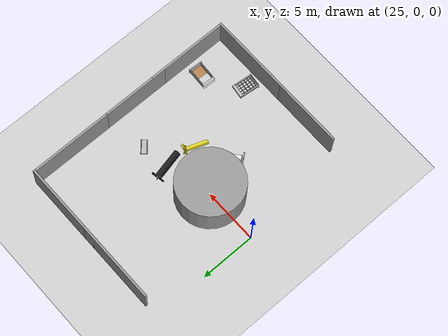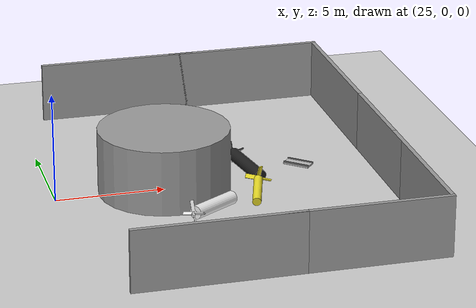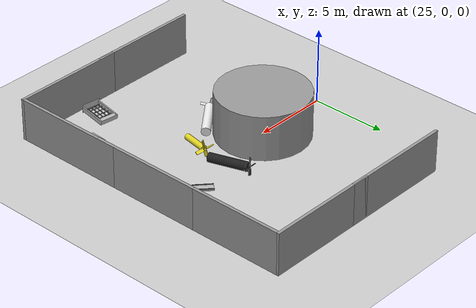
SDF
<sdf version="1.6">
 <world name="default">
  <model name="ground_plane">
   <static>1</static>
   <link name="link">
    <collision name="collision">
     <geometry><plane><normal>0 0 1</normal><size>100 100</size></plane></geometry>
     <surface><friction><ode><mu>100</mu><mu2>50</mu2></ode></friction></surface>
    </collision>
    <visual name="visual">
     <cast_shadows>0</cast_shadows>
     <geometry><plane><normal>0 0 1</normal><size>100 100</size></plane></geometry>
     <material>
      <script><uri>file://media/materials/scripts/gazebo.material</uri><name>Gazebo/Grey</name></script>
     </material>
    </visual>
   </link>
  </model>
  <model name="grey_wall">
   <static>1</static>
   <link name="link">
    <pose>0 0 1.4 0 -0 0</pose>
    <collision name="collision"><geometry><box><size>7.5 0.2 2.8</size></box></geometry></collision>
    <visual name="visual">
     <cast_shadows>0</cast_shadows>
     <geometry><box><size>7.5 0.2 2.8</size></box></geometry>
     <material>
      <script>
       <uri>model://grey_wall/materials/scripts</uri>
       <uri>model://grey_wall/materials/textures</uri>
       <name>vrc/grey_wall</name>
      </script>
     </material>
    </visual>
   </link>
   <pose>40 -6.2 0 0 0 -1.5708</pose>
  </model>
  <model name="grey_wall_clone">
   <static>1</static>
   <link name="link">
    <pose>0 0 1.4 0 -0 0</pose>
    <collision name="collision"><geometry><box><size>7.5 0.2 2.8</size></box></geometry></collision>
    <visual name="visual">
     <cast_shadows>0</cast_shadows>
     <geometry><box><size>7.5 0.2 2.8</size></box></geometry>
     <material>
      <script>
       <uri>model://grey_wall/materials/scripts</uri>
       <uri>model://grey_wall/materials/textures</uri>
       <name>vrc/grey_wall</name>
      </script>
     </material>
    </visual>
   </link>
   <pose>40 6.2 0 0 0 -1.5708</pose>
  </model>
  <model name="grey_wall_clone_2">
   <static>1</static>
   <link name="link">
    <pose>0 0 1.4 0 -0 0</pose>
    <collision name="collision"><geometry><box><size>7.5 0.2 2.8</size></box></geometry></collision>
    <visual name="visual">
     <cast_shadows>0</cast_shadows>
     <geometry><box><size>7.5 0.2 2.8</size></box></geometry>
     <material>
      <script>
       <uri>model://grey_wall/materials/scripts</uri>
       <uri>model://grey_wall/materials/textures</uri>
       <name>vrc/grey_wall</name>
      </script>
     </material>
    </visual>
   </link>
   <pose>30 -10 0 0 -0 3.14159</pose>
  </model>
  <model name="grey_wall_clone_3">
   <static>1</static>
   <link name="link">
    <pose>0 0 1.4 0 -0 0</pose>
    <collision name="collision"><geometry><box><size>7.5 0.2 2.8</size></box></geometry></collision>
    <visual name="visual">
     <cast_shadows>0</cast_shadows>
     <geometry><box><size>7.5 0.2 2.8</size></box></geometry>
     <material>
      <script>
       <uri>model://grey_wall/materials/scripts</uri>
       <uri>model://grey_wall/materials/textures</uri>
       <name>vrc/grey_wall</name>
      </script>
     </material>
    </visual>
   </link>
   <pose>30 10 0 0 -0 4e-06</pose>
  </model>
  <model name="grey_wall_clone_7">
   <static>1</static>
   <link name="link">
    <pose>0 0 1.4 0 -0 0</pose>
    <collision name="collision"><geometry><box><size>7.5 0.2 2.8</size></box></geometry></collision>
    <visual name="visual">
     <cast_shadows>0</cast_shadows>
     <geometry><box><size>7.5 0.2 2.8</size></box></geometry>
     <material>
      <script>
       <uri>model://grey_wall/materials/scripts</uri>
       <uri>model://grey_wall/materials/textures</uri>
       <name>vrc/grey_wall</name>
      </script>
     </material>
    </visual>
   </link>
   <pose>36.35 10 0 0 -0 3.14159</pose>
  </model>
  <model name="grey_wall_clone_8">
   <static>1</static>
   <link name="link">
    <pose>0 0 1.4 0 -0 0</pose>
    <collision name="collision"><geometry><box><size>7.5 0.2 2.8</size></box></geometry></collision>
    <visual name="visual">
     <cast_shadows>0</cast_shadows>
     <geometry><box><size>7.5 0.2 2.8</size></box></geometry>
     <material>
      <script>
       <uri>model://grey_wall/materials/scripts</uri>
       <uri>model://grey_wall/materials/textures</uri>
       <name>vrc/grey_wall</name>
      </script>
     </material>
    </visual>
   </link>
   <pose>40 0 0 0 0 -1.5708</pose>
  </model>
  <model name="grey_wall_clone_9">
   <static>1</static>
   <link name="link">
    <pose>0 0 1.4 0 -0 0</pose>
    <collision name="collision"><geometry><box><size>7.5 0.2 2.8</size></box></geometry></collision>
    <visual name="visual">
     <cast_shadows>0</cast_shadows>
     <geometry><box><size>7.5 0.2 2.8</size></box></geometry>
     <material>
      <script>
       <uri>model://grey_wall/materials/scripts</uri>
       <uri>model://grey_wall/materials/textures</uri>
       <name>vrc/grey_wall</name>
      </script>
     </material>
    </visual>
   </link>
   <pose>36.35 -10 0 0 -0 3.14159</pose>
  </model>
  <model name="frc2016_moat">
   <static>1</static>
   <link name="link">
    <inertial>
     <mass>10</mass>
     <pose>0 0 0.06738 0 -0 0</pose>
     <inertia><ixx>0.312195</ixx><ixy>0</ixy><ixz>0</ixz><iyy>1.35927</iyy><iyz>0</iyz><izz>1.64109</izz></inertia>
    </inertial>
    <visual name="platform">
     <pose>0 0 0.0381 0 -0 0</pose>
     <geometry><box><size>1.27 0.5969 0.0762</size></box></geometry>
    </visual>
    <collision name="platform">
     <pose>0 0 0.0381 0 -0 0</pose>
     <geometry><box><size>1.27 0.5969 0.0762</size></box></geometry>
    </collision>
    <visual name="tube1_side1">
     <pose>0 -0.25876 0.10301 0 -0 0</pose>
     <geometry><box><size>1.27 0.003175 0.0635</size></box></geometry>
     <material><ambient>0.46 0.46 0.46 1</ambient><diffuse>0.46 0.46 0.46 1</diffuse></material>
    </visual>
    <collision name="tube1_side1">
     <pose>0 -0.25876 0.10301 0 -0 0</pose>
     <geometry><box><size>1.27 0.003175 0.0635</size></box></geometry>
    </collision>
    <visual name="tube1_side2">
     <pose>0 -0.22384 0.10301 0 -0 0</pose>
     <geometry><box><size>1.27 0.003175 0.0635</size></box></geometry>
     <material><ambient>0.46 0.46 0.46 1</ambient><diffuse>0.46 0.46 0.46 1</diffuse></material>
    </visual>
    <collision name="tube1_side2">
     <pose>0 -0.22384 0.10301 0 -0 0</pose>
     <geometry><box><size>1.27 0.003175 0.0635</size></box></geometry>
    </collision>
    <visual name="tube1_top">
     <pose>0 -0.2413 0.13317 0 -0 0</pose>
     <geometry><box><size>1.27 0.0381 0.003175</size></box></geometry>
     <material><ambient>0.46 0.46 0.46 1</ambient><diffuse>0.46 0.46 0.46 1</diffuse></material>
    </visual>
    <collision name="tube1_top">
     <pose>0 -0.2413 0.13317 0 -0 0</pose>
     <geometry><box><size>1.27 0.0381 0.003175</size></box></geometry>
    </collision>
    <visual name="tube2_side1">
     <pose>0 0.22384 0.10301 0 -0 0</pose>
     <geometry><box><size>1.27 0.003175 0.0635</size></box></geometry>
     <material><ambient>0.46 0.46 0.46 1</ambient><diffuse>0.46 0.46 0.46 1</diffuse></material>
    </visual>
    <collision name="tube2_side1">
     <pose>0 0.22384 0.10301 0 -0 0</pose>
     <geometry><box><size>1.27 0.003175 0.0635</size></box></geometry>
    </collision>
    <visual name="tube2_side2">
     <pose>0 0.25876 0.10301 0 -0 0</pose>
     <geometry><box><size>1.27 0.003175 0.0635</size></box></geometry>
     <material><ambient>0.46 0.46 0.46 1</ambient><diffuse>0.46 0.46 0.46 1</diffuse></material>
    </visual>
    <collision name="tube2_side2">
     <pose>0 0.25876 0.10301 0 -0 0</pose>
     <geometry><box><size>1.27 0.003175 0.0635</size></box></geometry>
    </collision>
    <visual name="tube2_top">
     <pose>0 0.2413 0.13317 0 -0 0</pose>
     <geometry><box><size>1.27 0.0381 0.003175</size></box></geometry>
     <material><ambient>0.46 0.46 0.46 1</ambient><diffuse>0.46 0.46 0.46 1</diffuse></material>
    </visual>
    <collision name="tube2_top">
     <pose>0 0.2413 0.13317 0 -0 0</pose>
     <geometry><box><size>1.27 0.0381 0.003175</size></box></geometry>
    </collision>
   </link>
   <pose>36.6968 1.35253 0 0 0 -0.726122</pose>
  </model>
  <model name="unit_cylinder">
   <pose>30 0 1.5 0 -0 0</pose>
   <static>1</static>
   <link name="link">
    <inertial>
     <mass>1</mass>
     <inertia><ixx>0.145833</ixx><ixy>0</ixy><ixz>0</ixz><iyy>0.145833</iyy><iyz>0</iyz><izz>0.125</izz></inertia>
    </inertial>
    <collision name="collision">
     <geometry><cylinder><radius>3</radius><length>3</length></cylinder></geometry>
    </collision>
    <visual name="visual">
     <geometry><cylinder><radius>3</radius><length>3</length></cylinder></geometry>
     <material>
      <script><name>Gazebo/Grey</name><uri>file://media/materials/scripts/gazebo.material</uri></script>
     </material>
    </visual>
   </link>
  </model>
  <model name="frc2016_portcullis_clone">
   <link name="base">
    <inertial>
     <mass>50</mass>
     <pose>0 0 1.02941 0 -0 0</pose>
     <inertia><ixx>3.81711</ixx><ixy>0</ixy><ixz>0</ixz><iyy>4.87698</iyy><iyz>0</iyz><izz>1.6283</izz></inertia>
    </inertial>
    <visual name="platform">
     <pose>0 0 0.07284 0 -0 0</pose>
     <geometry><box><size>1.27 0.5842 0.003175</size></box></geometry>
    </visual>
    <collision name="platform">
     <pose>0 0 0.07284 0 -0 0</pose>
     <geometry><box><size>1.27 0.5842 0.003175</size></box></geometry>
    </collision>
    <visual name="left_column">
     <pose>0.59284 0 0.99042 0 -0 0</pose>
     <geometry><box><size>0.08375 0.28575 1.83198</size></box></geometry>
    </visual>
    <collision name="left_column">
     <pose>0.59284 0 0.99042 0 -0 0</pose>
     <geometry><box><size>0.08375 0.28575 1.83198</size></box></geometry>
    </collision>
    <visual name="right_column">
     <pose>-0.57759 0 0.99042 0 -0 0</pose>
     <geometry><box><size>0.08375 0.28575 1.83198</size></box></geometry>
    </visual>
    <collision name="right_column">
     <pose>-0.57759 0 0.99042 0 -0 0</pose>
     <geometry><box><size>0.08375 0.28575 1.83198</size></box></geometry>
    </collision>
    <visual name="top">
     <pose>-0.00034 0 1.77722 0 -0 0</pose>
     <geometry><box><size>1.22962 0.28575 0.26657</size></box></geometry>
    </visual>
    <collision name="top">
     <pose>-0.00034 0 1.77722 0 -0 0</pose>
     <geometry><box><size>1.22962 0.28575 0.26657</size></box></geometry>
    </collision>
    <visual name="castor1">
     <pose>-0.45651 -0.16234 0.03272 0 -0 0</pose>
     <geometry><sphere><radius>0.03272</radius></sphere></geometry>
    </visual>
    <collision name="castor1">
     <pose>-0.45651 -0.16234 0.03272 0 -0 0</pose>
     <geometry><sphere><radius>0.03272</radius></sphere></geometry>
    </collision>
    <visual name="castor2">
     <pose>-0.27883 0.21836 0.03272 0 -0 0</pose>
     <geometry><sphere><radius>0.03272</radius></sphere></geometry>
    </visual>
    <collision name="castor2">
     <pose>-0.27883 0.21836 0.03272 0 -0 0</pose>
     <geometry><sphere><radius>0.03272</radius></sphere></geometry>
    </collision>
    <visual name="castor3">
     <pose>0.28083 0.21906 0.03272 0 -0 0</pose>
     <geometry><sphere><radius>0.03272</radius></sphere></geometry>
    </visual>
    <collision name="castor3">
     <pose>0.28083 0.21906 0.03272 0 -0 0</pose>
     <geometry><sphere><radius>0.03272</radius></sphere></geometry>
    </collision>
    <visual name="castor4">
     <pose>0.45871 -0.16186 0.03272 0 -0 0</pose>
     <geometry><sphere><radius>0.03272</radius></sphere></geometry>
    </visual>
    <collision name="castor4">
     <pose>0.45871 -0.16186 0.03272 0 -0 0</pose>
     <geometry><sphere><radius>0.03272</radius></sphere></geometry>
    </collision>
   </link>
   <link name="gate">
    <pose>-0.0287 0.02885 0.93327 0 -0 0</pose>
    <inertial>
     <mass>2</mass>
     <inertia><ixx>3.81711</ixx><ixy>0</ixy><ixz>0</ixz><iyy>4.87698</iyy><iyz>0</iyz><izz>1.6283</izz></inertia>
    </inertial>
    <collision name="collision"><geometry><box><size>1.1938 0.02496 1.45732</size></box></geometry></collision>
    <visual name="horz_1">
     <pose>0 0 -0.70326 0 -0 0</pose>
     <geometry><box><size>1.1938 0.02496 0.0508</size></box></geometry>
     <material><ambient>0.4 0.4 0.4 1</ambient><diffuse>0.4 0.4 0.4 1</diffuse></material>
    </visual>
    <visual name="horz_2">
     <pose>0 0 -0.44926 0 -0 0</pose>
     <geometry><box><size>1.1938 0.02496 0.0508</size></box></geometry>
     <material><ambient>0.4 0.4 0.4 1</ambient><diffuse>0.4 0.4 0.4 1</diffuse></material>
    </visual>
    <visual name="horz_3">
     <pose>0 0 -0.14517 0 -0 0</pose>
     <geometry><box><size>1.1938 0.02496 0.0508</size></box></geometry>
     <material><ambient>0.4 0.4 0.4 1</ambient><diffuse>0.4 0.4 0.4 1</diffuse></material>
    </visual>
    <visual name="horz_4">
     <pose>0 0 0.16034 0 -0 0</pose>
     <geometry><box><size>1.1938 0.02496 0.0508</size></box></geometry>
     <material><ambient>0.4 0.4 0.4 1</ambient><diffuse>0.4 0.4 0.4 1</diffuse></material>
    </visual>
    <visual name="horz_5">
     <pose>0 0 0.46514 0 -0 0</pose>
     <geometry><box><size>1.1938 0.02496 0.0508</size></box></geometry>
     <material><ambient>0.4 0.4 0.4 1</ambient><diffuse>0.4 0.4 0.4 1</diffuse></material>
    </visual>
    <visual name="horz_6">
     <pose>0 0 0.72994 0 -0 0</pose>
     <geometry><box><size>1.1938 0.02496 0.0508</size></box></geometry>
     <material><ambient>0.4 0.4 0.4 1</ambient><diffuse>0.4 0.4 0.4 1</diffuse></material>
    </visual>
    <visual name="vert_1">
     <pose>-0.58448 0 0 0 -0 0</pose>
     <geometry><box><size>0.02495 0.02496 1.45732</size></box></geometry>
     <material><ambient>0.4 0.4 0.4 1</ambient><diffuse>0.4 0.4 0.4 1</diffuse></material>
    </visual>
    <visual name="vert_2">
     <pose>-0.38128 0 0 0 -0 0</pose>
     <geometry><box><size>0.0508 0.02496 1.45732</size></box></geometry>
     <material><ambient>0.4 0.4 0.4 1</ambient><diffuse>0.4 0.4 0.4 1</diffuse></material>
    </visual>
    <visual name="vert_3">
     <pose>-0.12728 0 0 0 -0 0</pose>
     <geometry><box><size>0.0508 0.02496 1.45732</size></box></geometry>
     <material><ambient>0.4 0.4 0.4 1</ambient><diffuse>0.4 0.4 0.4 1</diffuse></material>
    </visual>
    <visual name="vert_4">
     <pose>0.12672 0 0 0 -0 0</pose>
     <geometry><box><size>0.0508 0.02496 1.45732</size></box></geometry>
     <material><ambient>0.4 0.4 0.4 1</ambient><diffuse>0.4 0.4 0.4 1</diffuse></material>
    </visual>
    <visual name="vert_5">
     <pose>0.38072 0 0 0 -0 0</pose>
     <geometry><box><size>0.0508 0.02496 1.45732</size></box></geometry>
     <material><ambient>0.4 0.4 0.4 1</ambient><diffuse>0.4 0.4 0.4 1</diffuse></material>
    </visual>
    <visual name="vert_6">
     <pose>0.58392 0 0 0 -0 0</pose>
     <geometry><box><size>0.02495 0.02496 1.45732</size></box></geometry>
     <material><ambient>0.4 0.4 0.4 1</ambient><diffuse>0.4 0.4 0.4 1</diffuse></material>
    </visual>
   </link>
   <joint name="joint" type="prismatic">
    <parent>base</parent>
    <child>gate</child>
    <axis>
     <xyz>0 0 1</xyz>
     <limit><lower>0</lower><upper>1</upper></limit>
     <use_parent_model_frame>0</use_parent_model_frame>
     <dynamics><spring_reference>0</spring_reference><spring_stiffness>0</spring_stiffness></dynamics>
    </axis>
   </joint>
   <pose>35.0714 -9.57499 0.297155 -1.65189 -2.2e-05 -0.1269</pose>
  </model>
  <model name="frc2016_drawbridge_clone">
   <link name="base">
    <inertial>
     <mass>10</mass>
     <pose>0 0 1 0 -0 0</pose>
     <inertia><ixx>3.64907</ixx><ixy>0</ixy><ixz>0</ixz><iyy>4.67075</iyy><iyz>0</iyz><izz>1.66649</izz></inertia>
    </inertial>
    <visual name="platform">
     <pose>0 0 0.0425 0 -0 0</pose>
     <geometry><box><size>1.27 0.5969 0.085</size></box></geometry>
    </visual>
    <collision name="platform">
     <pose>0 0 0.0425 0 -0 0</pose>
     <geometry><box><size>1.27 0.5969 0.085</size></box></geometry>
    </collision>
    <visual name="right_wall">
     <pose>0.55879 0.04444 0.889 0 -0 0</pose>
     <geometry><box><size>0.05715 0.45698 1.77165</size></box></geometry>
    </visual>
    <collision name="right_wall">
     <pose>0.55879 0.04444 0.889 0 -0 0</pose>
     <geometry><box><size>0.05715 0.45698 1.77165</size></box></geometry>
    </collision>
    <visual name="left_wall">
     <pose>-0.55879 0.04444 0.889 0 -0 0</pose>
     <geometry><box><size>0.05715 0.45698 1.77165</size></box></geometry>
    </visual>
    <collision name="left_wall">
     <pose>-0.55879 0.04444 0.889 0 -0 0</pose>
     <geometry><box><size>0.05715 0.45698 1.77165</size></box></geometry>
    </collision>
    <visual name="front_upper_wall">
     <pose>0 0.27611 1.84286 0 -0 0</pose>
     <geometry><box><size>1.1557 0.006347 0.254</size></box></geometry>
    </visual>
    <collision name="front_upper_wall">
     <pose>0 0.27611 1.84286 0 -0 0</pose>
     <geometry><box><size>1.1557 0.006347 0.254</size></box></geometry>
    </collision>
    <visual name="back_upper_wall">
     <pose>0 -0.18722 1.84286 0 -0 0</pose>
     <geometry><box><size>1.1557 0.006347 0.254</size></box></geometry>
    </visual>
    <collision name="back_upper_wall">
     <pose>0 -0.18722 1.84286 0 -0 0</pose>
     <geometry><box><size>1.1557 0.006347 0.254</size></box></geometry>
    </collision>
   </link>
   <link name="bridge">
    <pose>0 0.28245 0.50577 0 -0 0</pose>
    <inertial>
     <mass>2</mass>
     <pose>0 -0.28245 -0.50577 0 -0 0</pose>
     <inertia>
      <ixx>0.139361</ixx>
      <ixy>0</ixy>
      <ixz>0</ixz>
      <iyy>0.357088</iyy>
      <iyz>0</iyz>
      <izz>0.217741</izz>
     </inertia>
    </inertial>
    <visual name="visual">
     <geometry><box><size>1.14298 0.006347 0.9144</size></box></geometry>
     <material><script><name>Gazebo/WoodFloor</name><uri>__default__</uri></script></material>
    </visual>
    <collision name="collision"><geometry><box><size>1.14298 0.006347 0.9144</size></box></geometry></collision>
   </link>
   <joint name="bridge_joint" type="revolute">
    <pose>0 0 -0.4172 0 -0 0</pose>
    <parent>base</parent>
    <child>bridge</child>
    <axis>
     <xyz>1 0 0</xyz>
     <limit><lower>-2</lower><upper>0</upper></limit>
     <use_parent_model_frame>0</use_parent_model_frame>
     <dynamics><spring_reference>0</spring_reference><spring_stiffness>0</spring_stiffness></dynamics>
    </axis>
   </joint>
   <pose>39.318 -6.57237 0.299299 -1.58096 0 1.51808</pose>
  </model>
  <model name="submarine_sinking_clone">
   <pose>33.8586 2.00517 0.449062 1.50693 0.170635 -2.91896</pose>
   <link name="body">
    <pose>0 0 -1.07935 0 -0 0</pose>
    <inertial>
     <mass>1102.7</mass>
     <inertia><ixx>645.998</ixx><ixy>0</ixy><ixz>0</ixz><iyy>645.998</iyy><iyz>0</iyz><izz>49.6215</izz></inertia>
    </inertial>
    <visual name="body_visual">
     <geometry><cylinder><radius>0.3</radius><length>2.6</length></cylinder></geometry>
     <material>
      <script><uri>file://media/materials/scripts/gazebo.material</uri><name>Gazebo/Black</name></script>
     </material>
    </visual>
    <collision name="body_collision">
     <geometry><cylinder><radius>0.3</radius><length>2.6</length></cylinder></geometry>
    </collision>
    <visual name="spacer_visual">
     <pose>0 0 1.37855 0 -0 0</pose>
     <geometry><cylinder><radius>0.0933402</radius><length>0.127211</length></cylinder></geometry>
     <material>
      <script><uri>file://media/materials/scripts/gazebo.material</uri><name>Gazebo/Black</name></script>
     </material>
    </visual>
   </link>
   <link name="propeller">
    <pose>0 0 0.3455 3.14159 -0 0</pose>
    <inertial>
     <mass>25.2312</mass>
     <inertia><ixx>0.531907</ixx><ixy>0</ixy><ixz>0</ixz><iyy>0.531907</iyy><iyz>0</iyz><izz>1.0513</izz></inertia>
    </inertial>
    <visual name="blade1_visual">
     <pose>0.34334 0 0 0.785398 -0 0</pose>
     <geometry><box><size>0.5 0.154178 0.05455</size></box></geometry>
     <material>
      <script><uri>file://media/materials/scripts/gazebo.material</uri><name>Gazebo/Black</name></script>
     </material>
    </visual>
    <collision name="blade1_collision">
     <pose>0.34334 0 0 0.785398 -0 0</pose>
     <geometry><box><size>0.5 0.154178 0.05455</size></box></geometry>
    </collision>
    <visual name="blade2_visual">
     <pose>0 0.34334 0 0.785398 0 1.5708</pose>
     <geometry><box><size>0.5 0.154178 0.05455</size></box></geometry>
     <material>
      <script><uri>file://media/materials/scripts/gazebo.material</uri><name>Gazebo/Black</name></script>
     </material>
    </visual>
    <collision name="blade2_collision">
     <pose>0 0.34334 0 0.785398 0 1.5708</pose>
     <geometry><box><size>0.5 0.154178 0.05455</size></box></geometry>
    </collision>
    <visual name="blade3_visual">
     <pose>-0.34334 -0 0 -0.785398 0 0</pose>
     <geometry><box><size>0.5 0.154178 0.05455</size></box></geometry>
     <material>
      <script><uri>file://media/materials/scripts/gazebo.material</uri><name>Gazebo/Black</name></script>
     </material>
    </visual>
    <collision name="blade3_collision">
     <pose>-0.34334 -0 0 -0.785398 0 0</pose>
     <geometry><box><size>0.5 0.154178 0.05455</size></box></geometry>
    </collision>
    <visual name="blade4_visual">
     <pose>-0 -0.34334 0 -0.785398 -0 1.5708</pose>
     <geometry><box><size>0.5 0.154178 0.05455</size></box></geometry>
     <material>
      <script><uri>file://media/materials/scripts/gazebo.material</uri><name>Gazebo/Black</name></script>
     </material>
    </visual>
    <collision name="blade4_collision">
     <pose>-0 -0.34334 0 -0.785398 -0 1.5708</pose>
     <geometry><box><size>0.5 0.154178 0.05455</size></box></geometry>
    </collision>
   </link>
   <joint name="spinning_joint" type="revolute">
    <parent>body</parent>
    <child>propeller</child>
    <axis>
     <xyz>0 0 1</xyz>
     <use_parent_model_frame>1</use_parent_model_frame>
     <limit><lower>-1e+12</lower><upper>1e+12</upper><effort>-1</effort><velocity>-1</velocity></limit>
     <dynamics><spring_reference>0</spring_reference><spring_stiffness>0</spring_stiffness></dynamics>
    </axis>
   </joint>
   <plugin name="buoyancy" filename="libBuoyancyPlugin.so"><fluid_density>999.1026</fluid_density></plugin>
  </model>
  <model name="submarine_clone">
   <pose>33.8302 -1.91811 0.33242 0.940743 1.34096 2.22283</pose>
   <link name="body">
    <inertial>
     <mass>251.327</mass>
     <inertia><ixx>86.2891</ixx><ixy>0</ixy><ixz>0</ixz><iyy>86.2891</iyy><iyz>0</iyz><izz>5.02655</izz></inertia>
    </inertial>
    <visual name="body_visual">
     <geometry><cylinder><radius>0.2</radius><length>2</length></cylinder></geometry>
     <material>
      <script><uri>file://media/materials/scripts/gazebo.material</uri><name>Gazebo/Yellow</name></script>
     </material>
    </visual>
    <collision name="body_collision">
     <geometry><cylinder><radius>0.2</radius><length>2</length></cylinder></geometry>
    </collision>
    <visual name="spacer_visual">
     <pose>0 0 1.05855 0 -0 0</pose>
     <geometry><cylinder><radius>0.0933402</radius><length>0.127211</length></cylinder></geometry>
     <material>
      <script><uri>file://media/materials/scripts/gazebo.material</uri><name>Gazebo/Yellow</name></script>
     </material>
    </visual>
   </link>
   <link name="propeller">
    <pose>0 0 1.09 3.14159 -0 0</pose>
    <inertial>
     <mass>21.82</mass>
     <inertia>
      <ixx>0.459994</ixx>
      <ixy>0</ixy>
      <ixz>0</ixz>
      <iyy>0.459994</iyy>
      <iyz>0</iyz>
      <izz>0.909167</izz>
     </inertia>
    </inertial>
    <visual name="blade1_visual">
     <pose>0.34334 0 0 0.785398 -0 0</pose>
     <geometry><box><size>0.5 0.2 0.05455</size></box></geometry>
     <material>
      <script><uri>file://media/materials/scripts/gazebo.material</uri><name>Gazebo/Yellow</name></script>
     </material>
    </visual>
    <collision name="blade1_collision">
     <pose>0.34334 0 0 0.785398 -0 0</pose>
     <geometry><box><size>0.5 0.2 0.05455</size></box></geometry>
    </collision>
    <visual name="blade2_visual">
     <pose>0 0.34334 0 0.785398 0 1.5708</pose>
     <geometry><box><size>0.5 0.2 0.05455</size></box></geometry>
     <material>
      <script><uri>file://media/materials/scripts/gazebo.material</uri><name>Gazebo/Yellow</name></script>
     </material>
    </visual>
    <collision name="blade2_collision">
     <pose>0 0.34334 0 0.785398 0 1.5708</pose>
     <geometry><box><size>0.5 0.2 0.05455</size></box></geometry>
    </collision>
    <visual name="blade3_visual">
     <pose>-0.34334 -0 0 -0.785398 0 0</pose>
     <geometry><box><size>0.5 0.2 0.05455</size></box></geometry>
     <material>
      <script><uri>file://media/materials/scripts/gazebo.material</uri><name>Gazebo/Yellow</name></script>
     </material>
    </visual>
    <collision name="blade3_collision">
     <pose>-0.34334 -0 0 -0.785398 0 0</pose>
     <geometry><box><size>0.5 0.2 0.05455</size></box></geometry>
    </collision>
    <visual name="blade4_visual">
     <pose>-0 -0.34334 0 -0.785398 -0 1.5708</pose>
     <geometry><box><size>0.5 0.2 0.05455</size></box></geometry>
     <material>
      <script><uri>file://media/materials/scripts/gazebo.material</uri><name>Gazebo/Yellow</name></script>
     </material>
    </visual>
    <collision name="blade4_collision">
     <pose>-0 -0.34334 0 -0.785398 -0 1.5708</pose>
     <geometry><box><size>0.5 0.2 0.05455</size></box></geometry>
    </collision>
   </link>
   <joint name="spinning_joint" type="revolute">
    <parent>body</parent>
    <child>propeller</child>
    <axis>
     <xyz>0 0 1</xyz>
     <use_parent_model_frame>1</use_parent_model_frame>
     <limit><lower>-1e+12</lower><upper>1e+12</upper><effort>-1</effort><velocity>-1</velocity></limit>
     <dynamics><spring_reference>0</spring_reference><spring_stiffness>0</spring_stiffness></dynamics>
    </axis>
   </joint>
  </model>
  <model name="submarine_buoyant">
   <pose>30.6608 -3.76463 0.44906 -1.32878 -1.30521 1.99705</pose>
   <link name="body">
    <pose>0 0 -1.07935 0 -0 0</pose>
    <inertial>
     <mass>367.566</mass>
     <inertia><ixx>215.333</ixx><ixy>0</ixy><ixz>0</ixz><iyy>215.333</iyy><iyz>0</iyz><izz>16.5405</izz></inertia>
    </inertial>
    <visual name="body_visual">
     <geometry><cylinder><radius>0.3</radius><length>2.6</length></cylinder></geometry>
     <material>
      <script><uri>file://media/materials/scripts/gazebo.material</uri><name>Gazebo/White</name></script>
     </material>
    </visual>
    <collision name="body_collision">
     <geometry><cylinder><radius>0.3</radius><length>2.6</length></cylinder></geometry>
    </collision>
    <visual name="spacer_visual">
     <pose>0 0 1.37855 0 -0 0</pose>
     <geometry><cylinder><radius>0.0933402</radius><length>0.127211</length></cylinder></geometry>
     <material>
      <script><uri>file://media/materials/scripts/gazebo.material</uri><name>Gazebo/White</name></script>
     </material>
    </visual>
   </link>
   <link name="propeller">
    <pose>0 0 0.3455 3.14159 -0 0</pose>
    <inertial>
     <mass>8.41041</mass>
     <inertia>
      <ixx>0.177302</ixx>
      <ixy>0</ixy>
      <ixz>0</ixz>
      <iyy>0.177302</iyy>
      <iyz>0</iyz>
      <izz>0.350434</izz>
     </inertia>
    </inertial>
    <visual name="blade1_visual">
     <pose>0.34334 0 0 0.785398 -0 0</pose>
     <geometry><box><size>0.5 0.154178 0.05455</size></box></geometry>
     <material>
      <script><uri>file://media/materials/scripts/gazebo.material</uri><name>Gazebo/White</name></script>
     </material>
    </visual>
    <collision name="blade1_collision">
     <pose>0.34334 0 0 0.785398 -0 0</pose>
     <geometry><box><size>0.5 0.154178 0.05455</size></box></geometry>
    </collision>
    <visual name="blade2_visual">
     <pose>0 0.34334 0 0.785398 0 1.5708</pose>
     <geometry><box><size>0.5 0.154178 0.05455</size></box></geometry>
     <material>
      <script><uri>file://media/materials/scripts/gazebo.material</uri><name>Gazebo/White</name></script>
     </material>
    </visual>
    <collision name="blade2_collision">
     <pose>0 0.34334 0 0.785398 0 1.5708</pose>
     <geometry><box><size>0.5 0.154178 0.05455</size></box></geometry>
    </collision>
    <visual name="blade3_visual">
     <pose>-0.34334 -0 0 -0.785398 0 0</pose>
     <geometry><box><size>0.5 0.154178 0.05455</size></box></geometry>
     <material>
      <script><uri>file://media/materials/scripts/gazebo.material</uri><name>Gazebo/White</name></script>
     </material>
    </visual>
    <collision name="blade3_collision">
     <pose>-0.34334 -0 0 -0.785398 0 0</pose>
     <geometry><box><size>0.5 0.154178 0.05455</size></box></geometry>
    </collision>
    <visual name="blade4_visual">
     <pose>-0 -0.34334 0 -0.785398 -0 1.5708</pose>
     <geometry><box><size>0.5 0.154178 0.05455</size></box></geometry>
     <material>
      <script><uri>file://media/materials/scripts/gazebo.material</uri><name>Gazebo/White</name></script>
     </material>
    </visual>
    <collision name="blade4_collision">
     <pose>-0 -0.34334 0 -0.785398 -0 1.5708</pose>
     <geometry><box><size>0.5 0.154178 0.05455</size></box></geometry>
    </collision>
   </link>
   <joint name="spinning_joint" type="revolute">
    <parent>body</parent>
    <child>propeller</child>
    <axis>
     <xyz>0 0 1</xyz>
     <use_parent_model_frame>1</use_parent_model_frame>
     <limit><lower>-1e+12</lower><upper>1e+12</upper><effort>-1</effort><velocity>-1</velocity></limit>
     <dynamics><spring_reference>0</spring_reference><spring_stiffness>0</spring_stiffness></dynamics>
    </axis>
   </joint>
  </model>
 </world>
</sdf>
